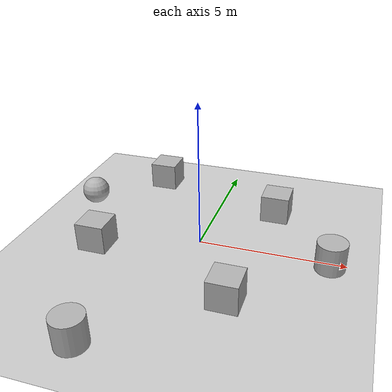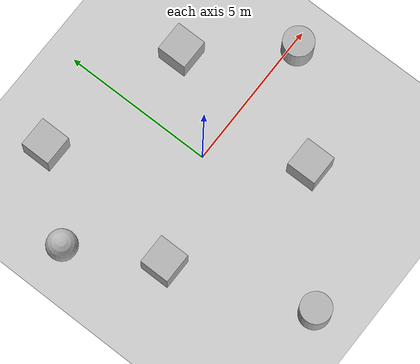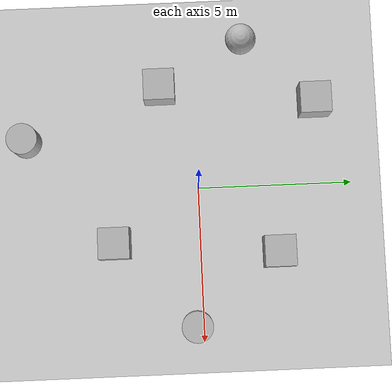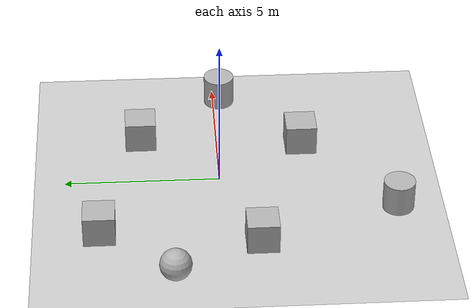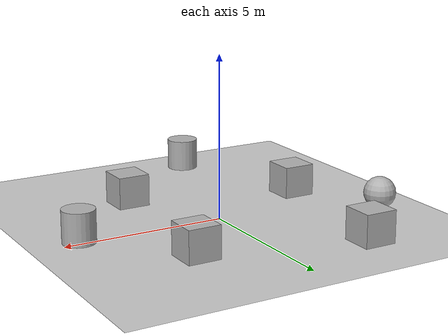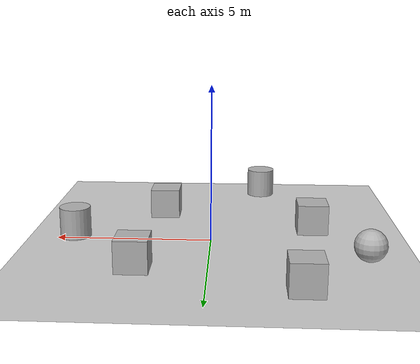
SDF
<sdf version='1.9'>
  <world name='empty'>
    <physics name="1ms" type="ignored">
      <max_step_size>0.001</max_step_size>
      <real_time_factor>1.0</real_time_factor>
    </physics>
    <plugin
      filename="gz-sim-physics-system"
      name="gz::sim::systems::Physics">
    </plugin>
    <plugin
      filename="gz-sim-user-commands-system"
      name="gz::sim::systems::UserCommands">
    </plugin>
    <plugin
      filename="gz-sim-scene-broadcaster-system"
      name="gz::sim::systems::SceneBroadcaster">
    </plugin>
    <plugin
      filename="gz-sim-sensors-system"
      name="gz::sim::systems::Sensors">
      <render_engine>ogre2</render_engine>
    </plugin>
    <plugin
      filename="gz-sim-contact-system"
      name="gz::sim::systems::Contact">
    </plugin>

    <model name='ground_plane'>
      <static>true</static>
      <link name='link'>
        <collision name='collision'>
          <geometry>
            <plane>
              <normal>0 0 1</normal>
              <size>100 100</size>
            </plane>
          </geometry>
          <surface>
            <friction>
              <ode/>
            </friction>
            <bounce/>
            <contact/>
          </surface>
        </collision>
        <visual name='visual'>
          <geometry>
            <plane>
              <normal>0 0 1</normal>
              <size>100 100</size>
            </plane>
          </geometry>
          <material>
            <ambient>0.8 0.8 0.8 1</ambient>
            <diffuse>0.8 0.8 0.8 1</diffuse>
            <specular>0.8 0.8 0.8 1</specular>
          </material>
        </visual>
        <pose>0 0 0 0 -0 0</pose>
        <inertial>
          <pose>0 0 0 0 -0 0</pose>
          <mass>1</mass>
          <inertia>
            <ixx>1</ixx>
            <ixy>0</ixy>
            <ixz>0</ixz>
            <iyy>1</iyy>
            <iyz>0</iyz>
            <izz>1</izz>
          </inertia>
        </inertial>
        <enable_wind>false</enable_wind>
      </link>
      <pose>0 0 0 0 -0 0</pose>
      <self_collide>false</self_collide>
    </model>
    <model name='box'>
      <pose>2.17202 2.50684 0.5 0 -0 0</pose>
      <link name='box_link'>
        <inertial>
          <inertia>
            <ixx>0.16666</ixx>
            <ixy>0</ixy>
            <ixz>0</ixz>
            <iyy>0.16666</iyy>
            <iyz>0</iyz>
            <izz>0.16666</izz>
          </inertia>
          <mass>1</mass>
          <pose>0 0 0 0 -0 0</pose>
        </inertial>
        <collision name='box_collision'>
          <geometry>
            <box>
              <size>1 1 1</size>
            </box>
          </geometry>
          <surface>
            <friction>
              <ode/>
            </friction>
            <bounce/>
            <contact/>
          </surface>
        </collision>
        <visual name='box_visual'>
          <geometry>
            <box>
              <size>1 1 1</size>
            </box>
          </geometry>
          <material>
            <ambient>0.3 0.3 0.3 1</ambient>
            <diffuse>0.7 0.7 0.7 1</diffuse>
            <specular>1 1 1 1</specular>
          </material>
        </visual>
        <pose>0 0 0 0 -0 0</pose>
        <enable_wind>false</enable_wind>
      </link>
      <static>false</static>
      <self_collide>false</self_collide>
    </model>
    <model name='box_0'>
      <pose>1.71987 -2.75854 0.5 0 -0 0</pose>
      <link name='box_link'>
        <inertial>
          <inertia>
            <ixx>0.16666</ixx>
            <ixy>0</ixy>
            <ixz>0</ixz>
            <iyy>0.16666</iyy>
            <iyz>0</iyz>
            <izz>0.16666</izz>
          </inertia>
          <mass>1</mass>
          <pose>0 0 0 0 -0 0</pose>
        </inertial>
        <collision name='box_collision'>
          <geometry>
            <box>
              <size>1 1 1</size>
            </box>
          </geometry>
          <surface>
            <friction>
              <ode/>
            </friction>
            <bounce/>
            <contact/>
          </surface>
        </collision>
        <visual name='box_visual'>
          <geometry>
            <box>
              <size>1 1 1</size>
            </box>
          </geometry>
          <material>
            <ambient>0.3 0.3 0.3 1</ambient>
            <diffuse>0.7 0.7 0.7 1</diffuse>
            <specular>1 1 1 1</specular>
          </material>
        </visual>
        <pose>0 0 0 0 -0 0</pose>
        <enable_wind>false</enable_wind>
      </link>
      <static>false</static>
      <self_collide>false</self_collide>
    </model>
    <model name='cylinder'>
      <pose>4.45636 -0.210557 0.5 0 -0 0</pose>
      <link name='cylinder_link'>
        <inertial>
          <inertia>
            <ixx>0.14580000000000001</ixx>
            <ixy>0</ixy>
            <ixz>0</ixz>
            <iyy>0.14580000000000001</iyy>
            <iyz>0</iyz>
            <izz>0.125</izz>
          </inertia>
          <mass>1</mass>
          <pose>0 0 0 0 -0 0</pose>
        </inertial>
        <collision name='cylinder_collision'>
          <geometry>
            <cylinder>
              <radius>0.5</radius>
              <length>1</length>
            </cylinder>
          </geometry>
          <surface>
            <friction>
              <ode/>
            </friction>
            <bounce/>
            <contact/>
          </surface>
        </collision>
        <visual name='cylinder_visual'>
          <geometry>
            <cylinder>
              <radius>0.5</radius>
              <length>1</length>
            </cylinder>
          </geometry>
          <material>
            <ambient>0.3 0.3 0.3 1</ambient>
            <diffuse>0.7 0.7 0.7 1</diffuse>
            <specular>1 1 1 1</specular>
          </material>
        </visual>
        <pose>0 0 0 0 -0 0</pose>
        <enable_wind>false</enable_wind>
      </link>
      <static>false</static>
      <self_collide>false</self_collide>
    </model>
    <model name='box_1'>
      <pose>-3.31704 -1.1436 0.5 0 -0 0</pose>
      <link name='box_link'>
        <inertial>
          <inertia>
            <ixx>0.16666</ixx>
            <ixy>0</ixy>
            <ixz>0</ixz>
            <iyy>0.16666</iyy>
            <iyz>0</iyz>
            <izz>0.16666</izz>
          </inertia>
          <mass>1</mass>
          <pose>0 0 0 0 -0 0</pose>
        </inertial>
        <collision name='box_collision'>
          <geometry>
            <box>
              <size>1 1 1</size>
            </box>
          </geometry>
          <surface>
            <friction>
              <ode/>
            </friction>
            <bounce/>
            <contact/>
          </surface>
        </collision>
        <visual name='box_visual'>
          <geometry>
            <box>
              <size>1 1 1</size>
            </box>
          </geometry>
          <material>
            <ambient>0.3 0.3 0.3 1</ambient>
            <diffuse>0.7 0.7 0.7 1</diffuse>
            <specular>1 1 1 1</specular>
          </material>
        </visual>
        <pose>0 0 0 0 -0 0</pose>
        <enable_wind>false</enable_wind>
      </link>
      <static>false</static>
      <self_collide>false</self_collide>
    </model>
    <model name='box_2'>
      <pose>-2.69619 3.87544 0.5 0 -0 0</pose>
      <link name='box_link'>
        <inertial>
          <inertia>
            <ixx>0.16666</ixx>
            <ixy>0</ixy>
            <ixz>0</ixz>
            <iyy>0.16666</iyy>
            <iyz>0</iyz>
            <izz>0.16666</izz>
          </inertia>
          <mass>1</mass>
          <pose>0 0 0 0 -0 0</pose>
        </inertial>
        <collision name='box_collision'>
          <geometry>
            <box>
              <size>1 1 1</size>
            </box>
          </geometry>
          <surface>
            <friction>
              <ode/>
            </friction>
            <bounce/>
            <contact/>
          </surface>
        </collision>
        <visual name='box_visual'>
          <geometry>
            <box>
              <size>1 1 1</size>
            </box>
          </geometry>
          <material>
            <ambient>0.3 0.3 0.3 1</ambient>
            <diffuse>0.7 0.7 0.7 1</diffuse>
            <specular>1 1 1 1</specular>
          </material>
        </visual>
        <pose>0 0 0 0 -0 0</pose>
        <enable_wind>false</enable_wind>
      </link>
      <static>false</static>
      <self_collide>false</self_collide>
    </model>
    <model name='cylinder_0'>
      <pose>-1.72679 -5.57289 0.5 0 -0 0</pose>
      <link name='cylinder_link'>
        <inertial>
          <inertia>
            <ixx>0.14580000000000001</ixx>
            <ixy>0</ixy>
            <ixz>0</ixz>
            <iyy>0.14580000000000001</iyy>
            <iyz>0</iyz>
            <izz>0.125</izz>
          </inertia>
          <mass>1</mass>
          <pose>0 0 0 0 -0 0</pose>
        </inertial>
        <collision name='cylinder_collision'>
          <geometry>
            <cylinder>
              <radius>0.5</radius>
              <length>1</length>
            </cylinder>
          </geometry>
          <surface>
            <friction>
              <ode/>
            </friction>
            <bounce/>
            <contact/>
          </surface>
        </collision>
        <visual name='cylinder_visual'>
          <geometry>
            <cylinder>
              <radius>0.5</radius>
              <length>1</length>
            </cylinder>
          </geometry>
          <material>
            <ambient>0.3 0.3 0.3 1</ambient>
            <diffuse>0.7 0.7 0.7 1</diffuse>
            <specular>1 1 1 1</specular>
          </material>
        </visual>
        <pose>0 0 0 0 -0 0</pose>
        <enable_wind>false</enable_wind>
      </link>
      <static>false</static>
      <self_collide>false</self_collide>
    </model>
    <model name='sphere'>
      <pose>-4.79864 1.57336 0.5 0 -0 0</pose>
      <link name='sphere_link'>
        <inertial>
          <inertia>
            <ixx>0.10000000000000001</ixx>
            <ixy>0</ixy>
            <ixz>0</ixz>
            <iyy>0.10000000000000001</iyy>
            <iyz>0</iyz>
            <izz>0.10000000000000001</izz>
          </inertia>
          <mass>1</mass>
          <pose>0 0 0 0 -0 0</pose>
        </inertial>
        <collision name='sphere_collision'>
          <geometry>
            <sphere>
              <radius>0.5</radius>
            </sphere>
          </geometry>
          <surface>
            <friction>
              <ode/>
            </friction>
            <bounce/>
            <contact/>
          </surface>
        </collision>
        <visual name='sphere_visual'>
          <geometry>
            <sphere>
              <radius>0.5</radius>
            </sphere>
          </geometry>
          <material>
            <ambient>0.3 0.3 0.3 1</ambient>
            <diffuse>0.7 0.7 0.7 1</diffuse>
            <specular>1 1 1 1</specular>
          </material>
        </visual>
        <pose>0 0 0 0 -0 0</pose>
        <enable_wind>false</enable_wind>
      </link>
      <static>false</static>
      <self_collide>false</self_collide>
    </model>
    <light name='sun' type='directional'>
      <pose>0 0 10 0 -0 0</pose>
      <cast_shadows>true</cast_shadows>
      <intensity>1</intensity>
      <direction>-0.5 0.1 -0.9</direction>
      <diffuse>0.8 0.8 0.8 1</diffuse>
      <specular>0.2 0.2 0.2 1</specular>
      <attenuation>
        <range>1000</range>
        <linear>0.01</linear>
        <constant>0.90000000000000002</constant>
        <quadratic>0.001</quadratic>
      </attenuation>
      <spot>
        <inner_angle>0</inner_angle>
        <outer_angle>0</outer_angle>
        <falloff>0</falloff>
      </spot>
    </light>
  </world>
</sdf>
